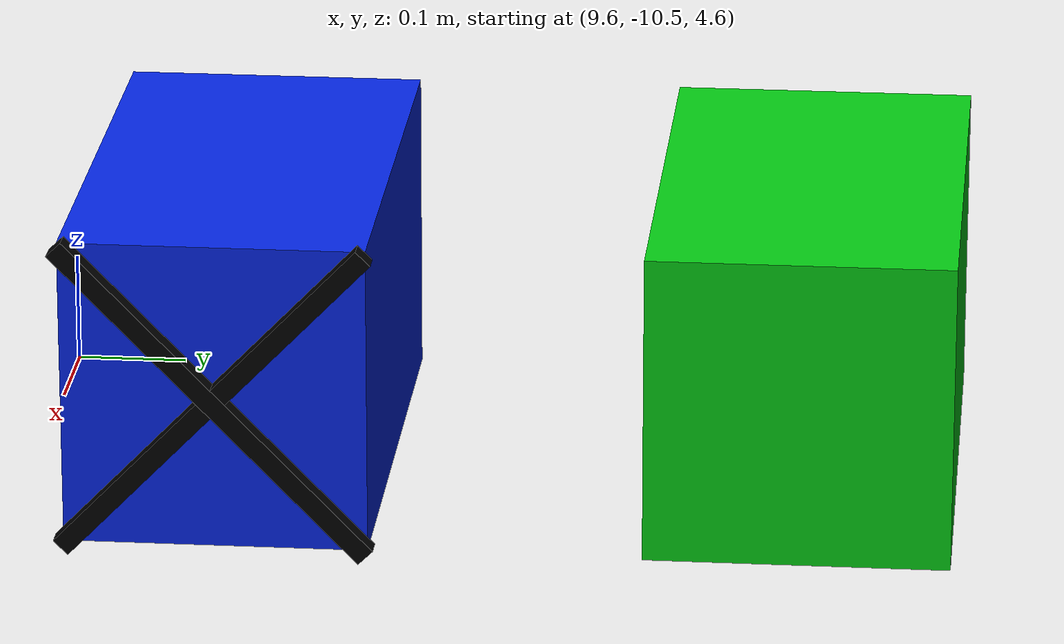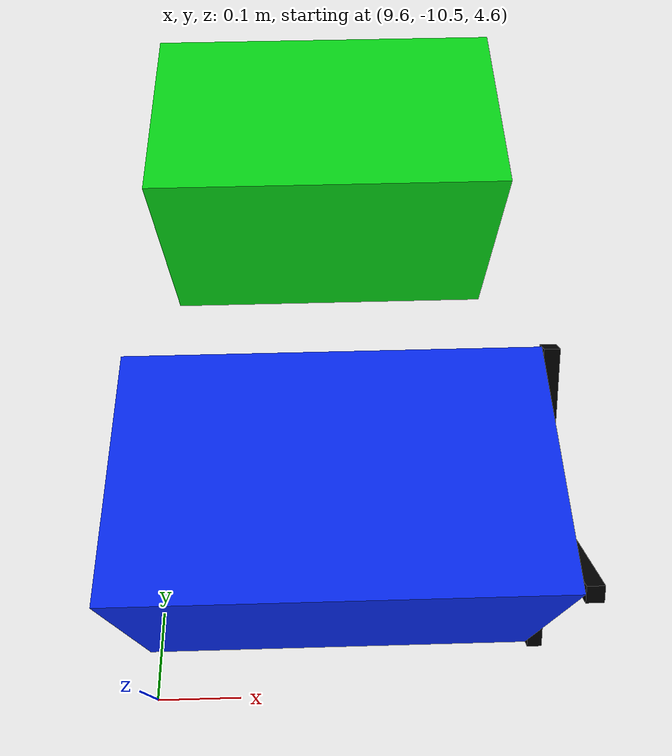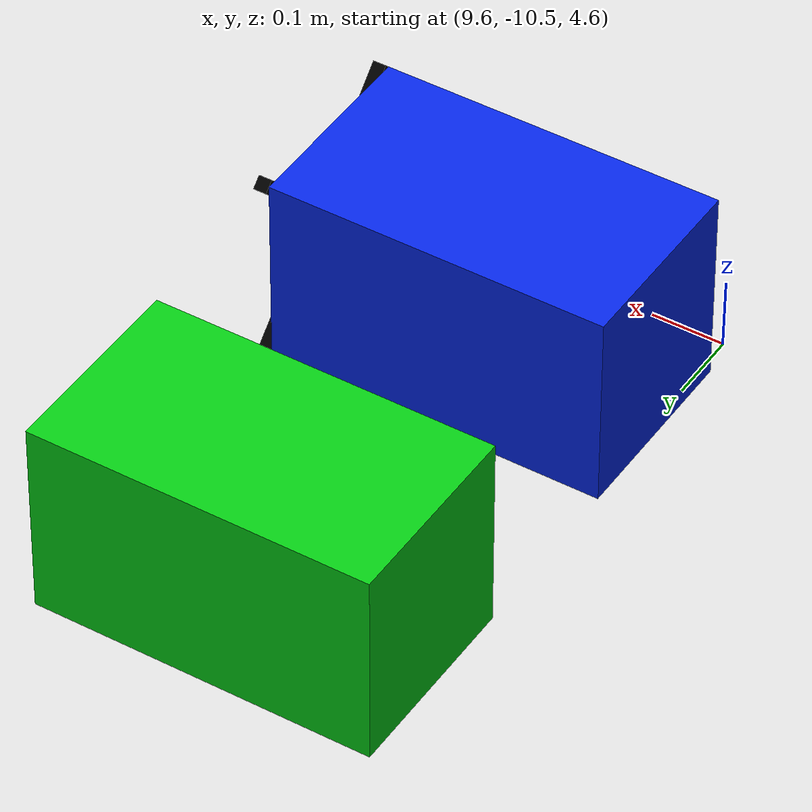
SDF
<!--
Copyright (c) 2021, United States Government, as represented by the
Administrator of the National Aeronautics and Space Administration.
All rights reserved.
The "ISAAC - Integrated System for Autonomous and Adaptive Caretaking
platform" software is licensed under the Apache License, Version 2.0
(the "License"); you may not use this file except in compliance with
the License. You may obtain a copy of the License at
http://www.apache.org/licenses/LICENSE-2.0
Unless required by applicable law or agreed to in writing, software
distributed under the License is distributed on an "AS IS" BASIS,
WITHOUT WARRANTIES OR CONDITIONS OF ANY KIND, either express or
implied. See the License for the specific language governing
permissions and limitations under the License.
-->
<sdf version="1.6">
 <world name="default">
  <physics name="default_physics" default="0" type="ode">
   <max_step_size>0.008</max_step_size>
   <real_time_factor>1</real_time_factor>
   <real_time_update_rate>125</real_time_update_rate>
  </physics>
  <scene>
   <ambient>1 1 1 1</ambient>
   <background>0 0 0 1</background>
   <fog><density>0</density></fog>
   <grid>0</grid>
   <shadows>0</shadows>
  </scene>
  <gravity>0 0 0</gravity>
  <magnetic_field>0 0 0</magnetic_field>
  <atmosphere type="adiabatic"/>
  <spherical_coordinates>
   <surface_model>EARTH_WGS84</surface_model>
   <latitude_deg>0</latitude_deg>
   <longitude_deg>0</longitude_deg>
   <elevation>0</elevation>
   <heading_deg>0</heading_deg>
  </spherical_coordinates>
  <model name="cargo_berth_1">
   <static>true</static>
   <pose>9.8193408 -9.806 4.7411744 0 0 -1.5707963</pose>
   <link name="berth">
    <visual name="berth_1_volume">
     <geometry><box><size>0.266792 0.464894 0.275782</size></box></geometry>
     <material>
      <ambient>0.02 0.8 0.08 1</ambient>
      <diffuse>0.02 0.8 0.08 1</diffuse>
      <emissive>0.01 0.15 0.02 1</emissive>
     </material>
    </visual>
   </link>
  </model>
  <model name="cargo_berth_2">
   <static>true</static>
   <pose>9.8193408 -10.312 4.7411744 0 0 -1.5707963</pose>
   <link name="berth">
    <visual name="berth_2_volume">
     <geometry><box><size>0.266792 0.464894 0.275782</size></box></geometry>
     <material>
      <ambient>0.02 0.15 0.9 1</ambient>
      <diffuse>0.02 0.15 0.9 1</diffuse>
      <emissive>0.01 0.03 0.18 1</emissive>
     </material>
    </visual>
   </link>
  </model>
  <model name="cargo_berth_blocked_marker">
   <static>false</static>
   <pose>9.8193408 -10.312 4.7411744 0 0 -1.5707963</pose>
   <link name="marker">
    <gravity>false</gravity>
    <kinematic>true</kinematic>
    <visual name="blocked_cross_positive">
     <pose>0 0.241447 0 0 0.8018 0</pose>
     <geometry><box><size>0.3837 0.018 0.018</size></box></geometry>
     <material><ambient>0 0 0 1</ambient><diffuse>0 0 0 1</diffuse><emissive>0 0 0 1</emissive></material>
    </visual>
    <visual name="blocked_cross_negative">
     <pose>0 0.241447 0 0 -0.8018 0</pose>
     <geometry><box><size>0.3837 0.018 0.018</size></box></geometry>
     <material><ambient>0 0 0 1</ambient><diffuse>0 0 0 1</diffuse><emissive>0 0 0 1</emissive></material>
    </visual>
   </link>
  </model>
  <light name="user_point_light_px" type="point">
   <pose>30 0 0 0 -0 0</pose>
   <diffuse>0.5 0.5 0.5 1</diffuse>
   <specular>0.1 0.1 0.1 1</specular>
   <attenuation>
    <range>100</range>
    <constant>0.1</constant>
    <linear>0.001</linear>
    <quadratic>0.001</quadratic>
   </attenuation>
   <cast_shadows>0</cast_shadows>
   <direction>0 0 -1</direction>
  </light>
  <light name="user_point_light_nx" type="point">
   <pose>-30 0 0 0 -0 0</pose>
   <diffuse>0.5 0.5 0.5 1</diffuse>
   <specular>0.1 0.1 0.1 1</specular>
   <attenuation>
    <range>100</range>
    <constant>0.1</constant>
    <linear>0.001</linear>
    <quadratic>0.001</quadratic>
   </attenuation>
   <cast_shadows>0</cast_shadows>
   <direction>0 0 -1</direction>
  </light>
  <light name="user_point_light_py" type="point">
   <pose>0 30 0 0 -0 0</pose>
   <diffuse>0.5 0.5 0.5 1</diffuse>
   <specular>0.1 0.1 0.1 1</specular>
   <attenuation>
    <range>100</range>
    <constant>0.1</constant>
    <linear>0.001</linear>
    <quadratic>0.001</quadratic>
   </attenuation>
   <cast_shadows>0</cast_shadows>
   <direction>0 0 -1</direction>
  </light>
  <light name="user_point_light_ny" type="point">
   <pose>0 -30 0 0 -0 0</pose>
   <diffuse>0.5 0.5 0.5 1</diffuse>
   <specular>0.1 0.1 0.1 1</specular>
   <attenuation>
    <range>100</range>
    <constant>0.1</constant>
    <linear>0.001</linear>
    <quadratic>0.001</quadratic>
   </attenuation>
   <cast_shadows>0</cast_shadows>
   <direction>0 0 -1</direction>
  </light>
  <light name="user_point_light_pz" type="point">
   <pose>0 0 30 0 -0 0</pose>
   <diffuse>0.5 0.5 0.5 1</diffuse>
   <specular>0.1 0.1 0.1 1</specular>
   <attenuation>
    <range>100</range>
    <constant>0.1</constant>
    <linear>0.001</linear>
    <quadratic>0.001</quadratic>
   </attenuation>
   <cast_shadows>0</cast_shadows>
   <direction>0 0 -1</direction>
  </light>
  <light name="user_point_light_nz" type="point">
   <pose>0 0 -30 0 -0 0</pose>
   <diffuse>0.5 0.5 0.5 1</diffuse>
   <specular>0.1 0.1 0.1 1</specular>
   <attenuation>
    <range>100</range>
    <constant>0.1</constant>
    <linear>0.001</linear>
    <quadratic>0.001</quadratic>
   </attenuation>
   <cast_shadows>0</cast_shadows>
   <direction>0 0 -1</direction>
  </light>
  <plugin name="plugin_speed" filename="libgazebo_world_plugin_speed.so"/>
 </world>
</sdf>
